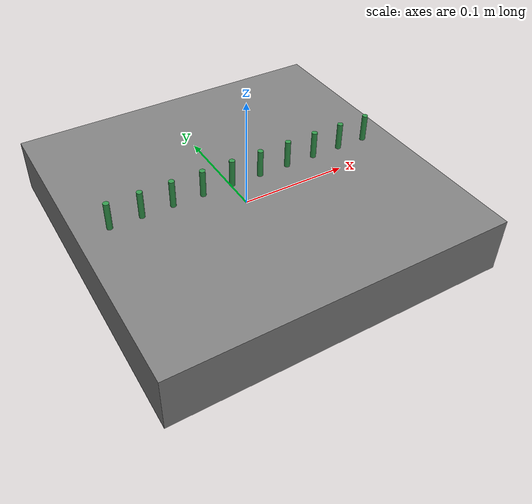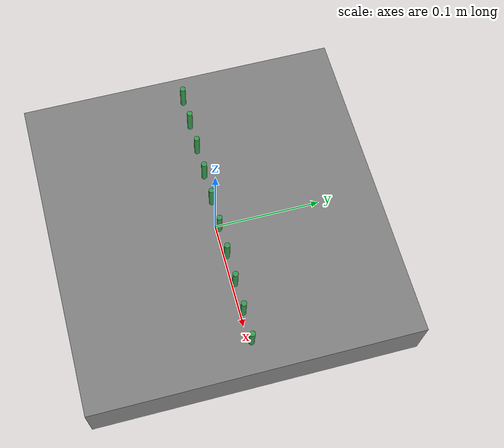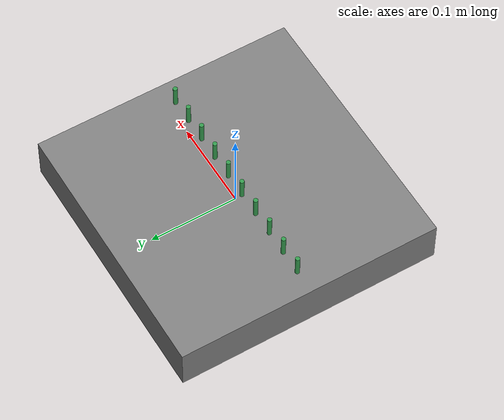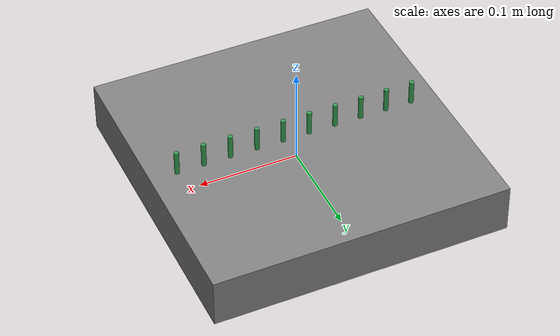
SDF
<?xml version="1.0" ?>
<sdf version="1.6">
  <model name="base_with_cylinders">
    <static>true</static>
    <link name="base_link">
      <visual name="base_visual">
        <geometry>
          <box>
            <size>0.3 0.3 0.05</size>
          </box>
        </geometry>
        <material>
          <ambient>0.5 0.5 0.5 1</ambient>
        </material>
      </visual>
    </link>
    <link name="cylinder_1">
      <pose>-0.12272727272727273 0 0.037500000000000006 0 0 0</pose>
      <visual name="cylinder_visual_1">
        <geometry>
          <cylinder>
            <radius>0.0025</radius>
            <length>0.025</length>
          </cylinder>
        </geometry>
        <material>
          <ambient>0.2 0.6 0.3 1</ambient>
        </material>
      </visual>
      <collision name="cylinder_collision_1">
        <geometry>
          <cylinder>
            <radius>0.0025</radius>
            <length>0.025</length>
          </cylinder>
        </geometry>
      </collision>
    </link>
    <link name="cylinder_2">
      <pose>-0.09545454545454546 0 0.037500000000000006 0 0 0</pose>
      <visual name="cylinder_visual_2">
        <geometry>
          <cylinder>
            <radius>0.0025</radius>
            <length>0.025</length>
          </cylinder>
        </geometry>
        <material>
          <ambient>0.2 0.6 0.3 1</ambient>
        </material>
      </visual>
      <collision name="cylinder_collision_2">
        <geometry>
          <cylinder>
            <radius>0.0025</radius>
            <length>0.025</length>
          </cylinder>
        </geometry>
      </collision>
    </link>
    <link name="cylinder_3">
      <pose>-0.06818181818181818 0 0.037500000000000006 0 0 0</pose>
      <visual name="cylinder_visual_3">
        <geometry>
          <cylinder>
            <radius>0.0025</radius>
            <length>0.025</length>
          </cylinder>
        </geometry>
        <material>
          <ambient>0.2 0.6 0.3 1</ambient>
        </material>
      </visual>
      <collision name="cylinder_collision_3">
        <geometry>
          <cylinder>
            <radius>0.0025</radius>
            <length>0.025</length>
          </cylinder>
        </geometry>
      </collision>
    </link>
    <link name="cylinder_4">
      <pose>-0.04090909090909091 0 0.037500000000000006 0 0 0</pose>
      <visual name="cylinder_visual_4">
        <geometry>
          <cylinder>
            <radius>0.0025</radius>
            <length>0.025</length>
          </cylinder>
        </geometry>
        <material>
          <ambient>0.2 0.6 0.3 1</ambient>
        </material>
      </visual>
      <collision name="cylinder_collision_4">
        <geometry>
          <cylinder>
            <radius>0.0025</radius>
            <length>0.025</length>
          </cylinder>
        </geometry>
      </collision>
    </link>
    <link name="cylinder_5">
      <pose>-0.013636363636363641 0 0.037500000000000006 0 0 0</pose>
      <visual name="cylinder_visual_5">
        <geometry>
          <cylinder>
            <radius>0.0025</radius>
            <length>0.025</length>
          </cylinder>
        </geometry>
        <material>
          <ambient>0.2 0.6 0.3 1</ambient>
        </material>
      </visual>
      <collision name="cylinder_collision_5">
        <geometry>
          <cylinder>
            <radius>0.0025</radius>
            <length>0.025</length>
          </cylinder>
        </geometry>
      </collision>
    </link>
    <link name="cylinder_6">
      <pose>0.013636363636363641 0 0.037500000000000006 0 0 0</pose>
      <visual name="cylinder_visual_6">
        <geometry>
          <cylinder>
            <radius>0.0025</radius>
            <length>0.025</length>
          </cylinder>
        </geometry>
        <material>
          <ambient>0.2 0.6 0.3 1</ambient>
        </material>
      </visual>
      <collision name="cylinder_collision_6">
        <geometry>
          <cylinder>
            <radius>0.0025</radius>
            <length>0.025</length>
          </cylinder>
        </geometry>
      </collision>
    </link>
    <link name="cylinder_7">
      <pose>0.040909090909090895 0 0.037500000000000006 0 0 0</pose>
      <visual name="cylinder_visual_7">
        <geometry>
          <cylinder>
            <radius>0.0025</radius>
            <length>0.025</length>
          </cylinder>
        </geometry>
        <material>
          <ambient>0.2 0.6 0.3 1</ambient>
        </material>
      </visual>
      <collision name="cylinder_collision_7">
        <geometry>
          <cylinder>
            <radius>0.0025</radius>
            <length>0.025</length>
          </cylinder>
        </geometry>
      </collision>
    </link>
    <link name="cylinder_8">
      <pose>0.06818181818181818 0 0.037500000000000006 0 0 0</pose>
      <visual name="cylinder_visual_8">
        <geometry>
          <cylinder>
            <radius>0.0025</radius>
            <length>0.025</length>
          </cylinder>
        </geometry>
        <material>
          <ambient>0.2 0.6 0.3 1</ambient>
        </material>
      </visual>
      <collision name="cylinder_collision_8">
        <geometry>
          <cylinder>
            <radius>0.0025</radius>
            <length>0.025</length>
          </cylinder>
        </geometry>
      </collision>
    </link>
    <link name="cylinder_9">
      <pose>0.09545454545454546 0 0.037500000000000006 0 0 0</pose>
      <visual name="cylinder_visual_9">
        <geometry>
          <cylinder>
            <radius>0.0025</radius>
            <length>0.025</length>
          </cylinder>
        </geometry>
        <material>
          <ambient>0.2 0.6 0.3 1</ambient>
        </material>
      </visual>
      <collision name="cylinder_collision_9">
        <geometry>
          <cylinder>
            <radius>0.0025</radius>
            <length>0.025</length>
          </cylinder>
        </geometry>
      </collision>
    </link>
    <link name="cylinder_10">
      <pose>0.12272727272727271 0 0.037500000000000006 0 0 0</pose>
      <visual name="cylinder_visual_10">
        <geometry>
          <cylinder>
            <radius>0.0025</radius>
            <length>0.025</length>
          </cylinder>
        </geometry>
        <material>
          <ambient>0.2 0.6 0.3 1</ambient>
        </material>
      </visual>
      <collision name="cylinder_collision_10">
        <geometry>
          <cylinder>
            <radius>0.0025</radius>
            <length>0.025</length>
          </cylinder>
        </geometry>
      </collision>
    </link>
  </model>
</sdf>
